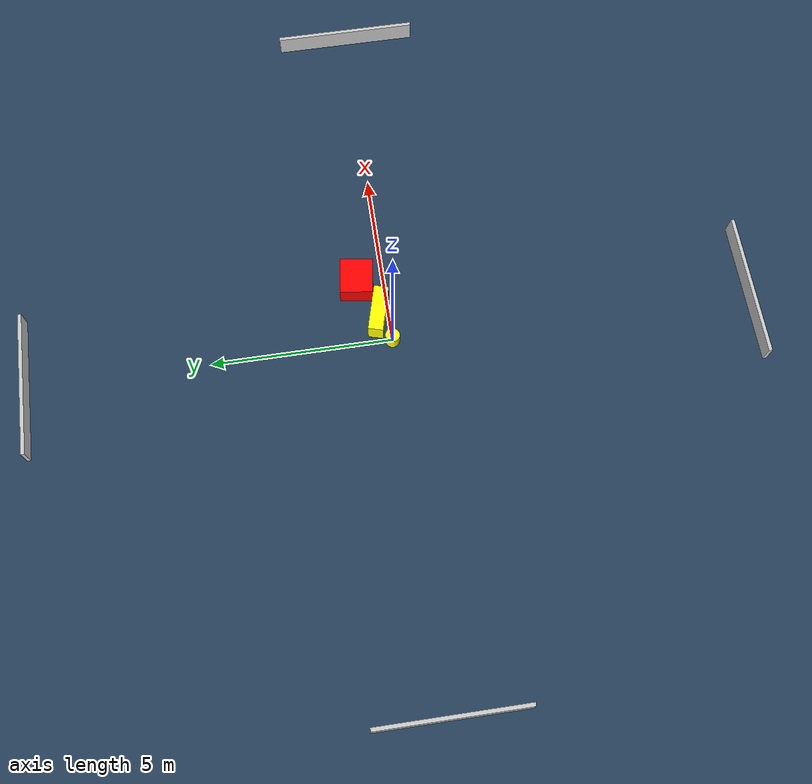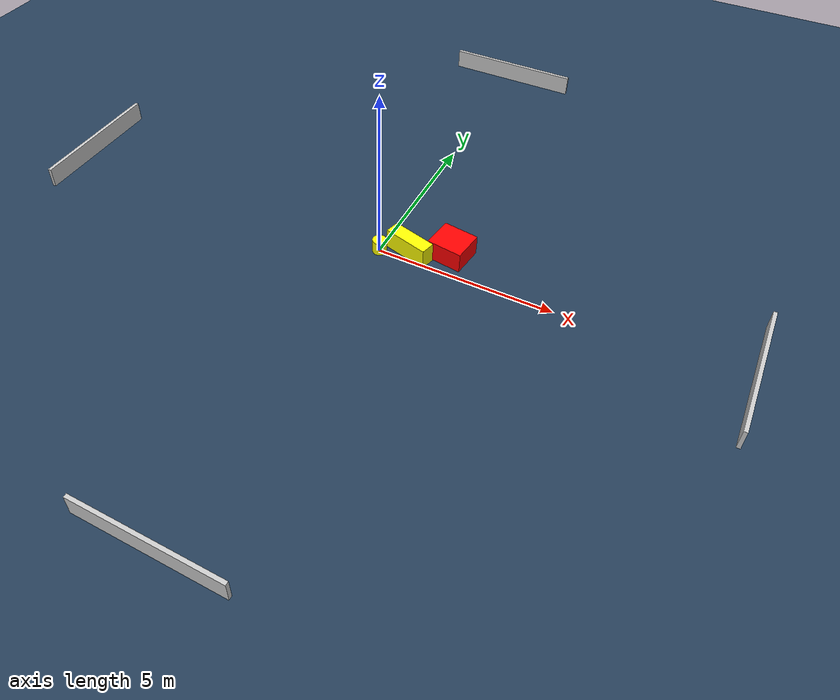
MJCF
<?xml version="1.0" ?>
<mujoco model="generated_environment">
  <option timestep="0.01" integrator="RK4" cone="elliptic"/>
  <default>
    <geom density="1"/>
  </default>
  <asset>
    <texture builtin="gradient" height="3072" name="skybox" rgb1="0.3 0.5 0.7" rgb2="0 0 0" type="skybox" width="512"/>
    <texture builtin="checker" height="300" name="groundplane" rgb1="0.2 0.3 0.4" rgb2="0.1 0.2 0.3" type="2d" width="300"/>
    <material name="groundplane" reflectance="0.2" texrepeat="5 5" texture="groundplane"/>
  </asset>
  <worldbody>
    <light dir="0 0 -1" directional="true" pos="0 0 1.5"/>
    <geom condim="3" friction="0.5 0.005 0.001" material="groundplane" name="floor" pos="0 0 0" size="0 0 0.05" type="plane"/>
    <body name="walls">
      <geom name="wall_1" condim="4" pos="-10.0 0.0 0.3" rgba="0.800000011920929 0.800000011920929 0.800000011920929 1.0" size="0.05 2.0 0.3" type="box"/>
      <geom name="wall_2" condim="4" pos="10.0 0.0 0.3" rgba="0.800000011920929 0.800000011920929 0.800000011920929 1.0" size="0.05 2.0 0.3" type="box"/>
      <geom name="wall_3" condim="4" pos="0.0 -10.0 0.3" rgba="0.800000011920929 0.800000011920929 0.800000011920929 1.0" size="2.0 0.05 0.3" type="box"/>
      <geom name="wall_4" condim="4" pos="0.0 10.0 0.3" rgba="0.800000011920929 0.800000011920929 0.800000011920929 1.0" size="2.0 0.05 0.3" type="box"/>
    </body>
    <body name="robot">
      <joint name="joint_x" type="slide" pos="0 0 0" axis="1 0 0"/>
      <joint name="joint_y" type="slide" pos="0 0 0" axis="0 1 0"/>
      <geom name="robot" type="cylinder" pos="0.0 0.0 0.2" size="0.2 0.2 0.0" mass="5.0" friction="1.0 0.005 0.0001" condim="4" rgba="1.0 1.0 0.0 1.0"/>
    </body>
    <body name="obstacle_1_movable">
      <geom name="obstacle_1_movable" condim="4" pos="0.7802215664804085 0.2770099727177426 0.3" euler="0 0 344.8249685621648" friction="0.0 0.005 0.001" rgba="1.0 1.0 0.0 1.0" size="0.6457734312132946 0.20629555701972924 0.3" type="box" mass="0.1"/>
      <joint type="free"/>
    </body>
    <body name="obstacle_2_static">
      <geom name="obstacle_2_static" condim="4" pos="1.8340041624350718 0.7482280267589871 0.3" euler="0 0 82.37830362018019" friction="0.0 0.005 0.001" rgba="1.0 0.0 0.0 1.0" size="0.45315661408435354 0.5058493498235921 0.3" type="box"/>
    </body>
  </worldbody>
  <actuator>
    <motor name="actuator_x" joint="joint_x" gear="1" ctrlrange="-1 1"/>
    <motor name="actuator_y" joint="joint_y" gear="1" ctrlrange="-1 1"/>
  </actuator>
</mujoco>
